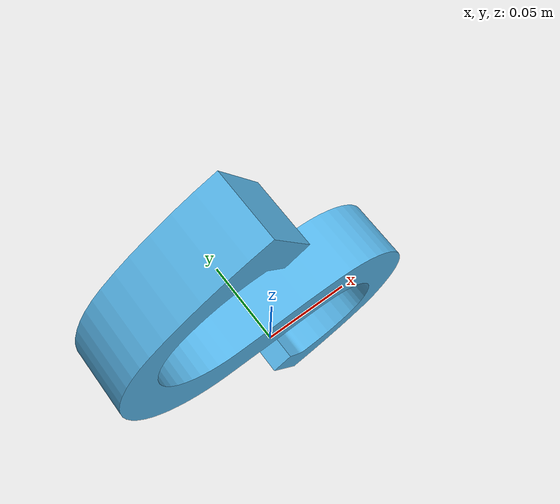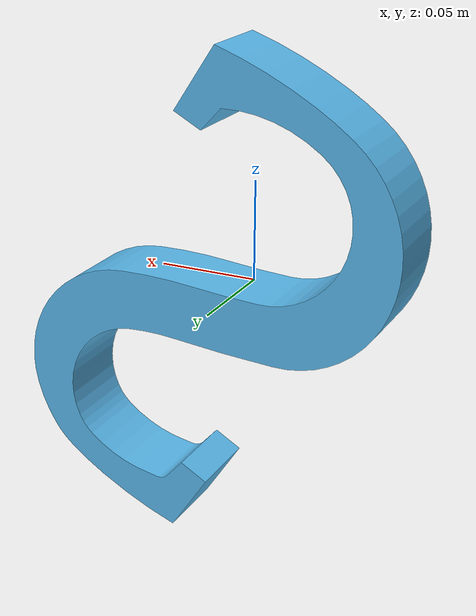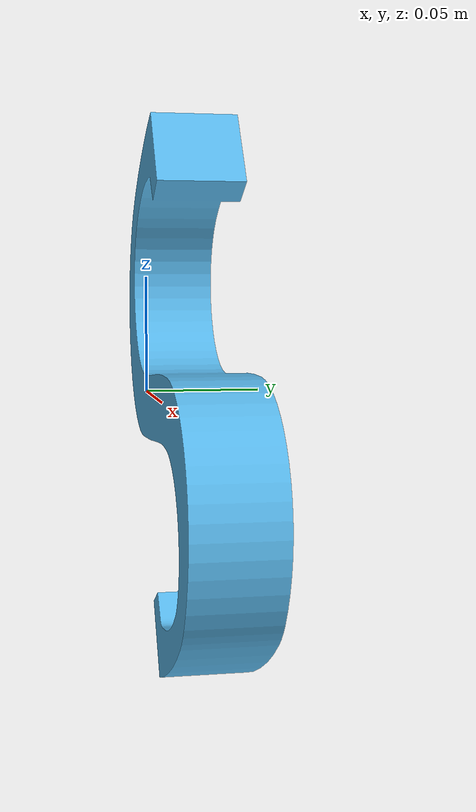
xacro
<?xml version="1.0"?>
<robot  xmlns:xacro="http://ros.org/wiki/xacro" name="part">

<!-- |    This document was auto-generated for Spirit Edge Seal                        | -->
<!-- |    EDITING THIS FILE BY HAND IS NOT RECOMMENDED                                 | -->

  <!-- This contains the macro "ses_part_macro" that places the clip wrt the tool tip -->
  <xacro:include filename="$(find lesson_advanced_launch)/models/part.macro.xacro" />

  <!-- Run the macro with the part name and offsets -->
  <xacro:ses_part_macro model_name="letterS.dae"
                        model_x="0.0"
                        model_y="0.0"
                        model_z="0.025"
                        model_rr="-1.5708"
                        model_rp="1.1"
                        model_ry="0.0" />

<!--***WARNING*** This file had one or more values replaced due to a badly formatted csv file.-->
</robot>

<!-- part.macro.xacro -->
<robot xmlns:xacro="http://ros.org/wiki/xacro">

<!--This macro is designed to be run by a part xacro in the ses_parts/ package -->
<xacro:macro name="ses_part_macro" params="model_name model_x model_y model_z model_rr model_rp model_ry" >

  <!-- tool1 is the point at which parts connect to the tool -->
  <!-- it is also referneced in tool.macro.xacro -->
  <link name="tool1" />

  <joint name="tool1-part" type="fixed" >
    <parent link="tool1" />
    <child link="part" />
    <origin xyz="${model_x} ${model_y} ${model_z}" rpy="${model_rr} ${model_rp} ${model_ry}" />
  </joint>

  <link name="part" >
    <visual>
      <geometry>
        <mesh filename="package://lesson_advanced_launch/models/${model_name}" />
      </geometry>
    </visual>
    <collision>
      <geometry>
        <mesh filename="package://lesson_advanced_launch/models/${model_name}" />
      </geometry>
    </collision>
  </link>

</xacro:macro>
</robot>
